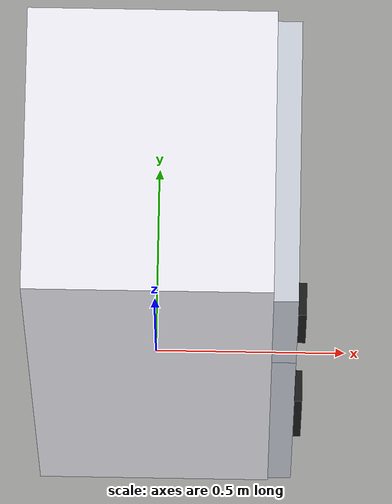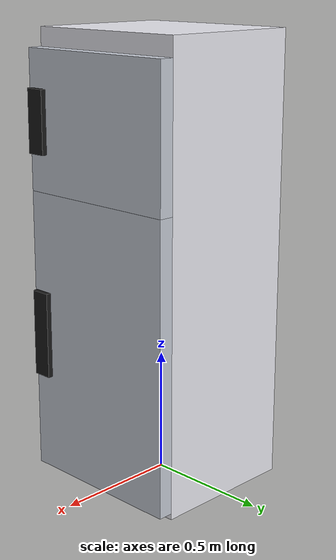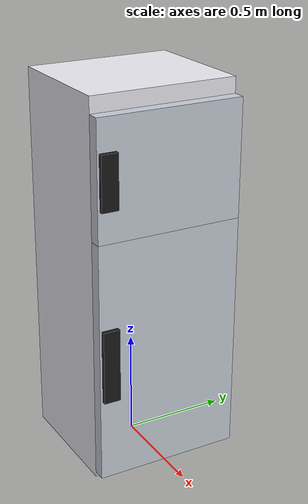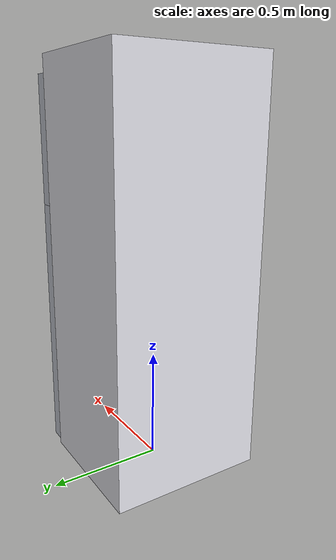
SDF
<?xml version="1.0"?>
<sdf version="1.7">
  <model name="refrigerator">
    <!-- Main refrigerator body -->
    <link name="refrigerator_base">
      <inertial>
        <mass>200.0</mass>
        <pose>0 0 0.9 0 0 0</pose>
        <inertia>
          <ixx>50.0</ixx>
          <ixy>0</ixy>
          <ixz>0</ixz>
          <iyy>50.0</iyy>
          <iyz>0</iyz>
          <izz>20.0</izz>
        </inertia>
      </inertial>
      <!-- Main body box -->
      <visual name="body">
        <pose>0 0 0.9 0 0 0</pose>
        <geometry>
          <box>
            <size>0.6 0.7 1.8</size>
          </box>
        </geometry>
        <material>
          <diffuse>0.92 0.92 0.95 1.0</diffuse>
        </material>
      </visual>
      <collision name="collision">
        <pose>0 0 0.9 0 0 0</pose>
        <geometry>
          <box>
            <size>0.6 0.7 1.8</size>
          </box>
        </geometry>
      </collision>
    </link>

    <!-- Lower door -->
    <link name="door_lower">
      <pose>0.3 0.35 0.6 0 0 0</pose>
      <inertial>
        <mass>30.0</mass>
        <inertia>
          <ixx>3.0</ixx>
          <ixy>0</ixy>
          <ixz>0</ixz>
          <iyy>2.0</iyy>
          <iyz>0</iyz>
          <izz>1.0</izz>
        </inertia>
      </inertial>
      <!-- Door panel -->
      <visual name="door">
        <pose>0.03 -0.35 0 0 0 0</pose>
        <geometry>
          <box>
            <size>0.06 0.7 1.15</size>
          </box>
        </geometry>
        <material>
          <diffuse>0.78 0.80 0.84 1.0</diffuse>
        </material>
      </visual>
      <!-- Handle as a simple box -->
      <visual name="handle">
        <pose>0.07 -0.65 0 0 0 0</pose>
        <geometry>
          <box>
            <size>0.02 0.08 0.35</size>
          </box>
        </geometry>
        <material>
          <diffuse>0.1 0.1 0.1 1.0</diffuse>
        </material>
      </visual>
      <collision name="collision">
        <pose>0.03 -0.35 0 0 0 0</pose>
        <geometry>
          <box>
            <size>0.06 0.7 1.15</size>
          </box>
        </geometry>
      </collision>
    </link>

    <!-- Upper door -->
    <link name="door_upper">
      <pose>0.3 0.35 1.45 0 0 0</pose>
      <inertial>
        <mass>20.0</mass>
        <inertia>
          <ixx>1.0</ixx>
          <ixy>0</ixy>
          <ixz>0</ixz>
          <iyy>0.5</iyy>
          <iyz>0</iyz>
          <izz>0.6</izz>
        </inertia>
      </inertial>
      <!-- Door panel -->
      <visual name="door">
        <pose>0.03 -0.35 0 0 0 0</pose>
        <geometry>
          <box>
            <size>0.06 0.7 0.55</size>
          </box>
        </geometry>
        <material>
          <diffuse>0.78 0.80 0.84 1.0</diffuse>
        </material>
      </visual>
      <!-- Handle as a simple box -->
      <visual name="handle">
        <pose>0.07 -0.65 0 0 0 0</pose>
        <geometry>
          <box>
            <size>0.02 0.08 0.25</size>
          </box>
        </geometry>
        <material>
          <diffuse>0.1 0.1 0.1 1.0</diffuse>
        </material>
      </visual>
      <collision name="collision">
        <pose>0.03 -0.35 0 0 0 0</pose>
        <geometry>
          <box>
            <size>0.06 0.7 0.55</size>
          </box>
        </geometry>
      </collision>
    </link>

    <!-- Lower door hinge joint -->
    <joint name="door_lower_joint" type="revolute">
      <parent>refrigerator_base</parent>
      <child>door_lower</child>
      <axis>
        <xyz>0 0 1</xyz>
        <limit>
          <lower>0</lower>
          <upper>2.0</upper>
        </limit>
        <dynamics>
          <damping>1.0</damping>
        </dynamics>
      </axis>
    </joint>

    <!-- Upper door hinge joint -->
    <joint name="door_upper_joint" type="revolute">
      <parent>refrigerator_base</parent>
      <child>door_upper</child>
      <axis>
        <xyz>0 0 1</xyz>
        <limit>
          <lower>0</lower>
          <upper>2.0</upper>
        </limit>
        <dynamics>
          <damping>1.0</damping>
        </dynamics>
      </axis>
    </joint>
  </model>
</sdf>
